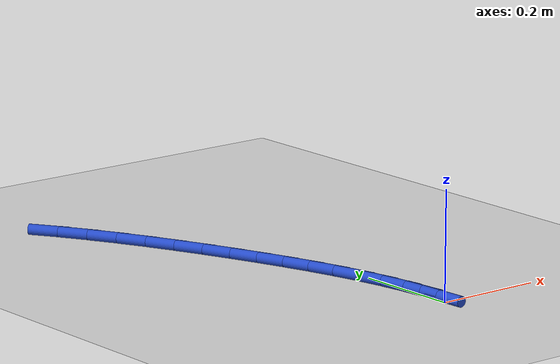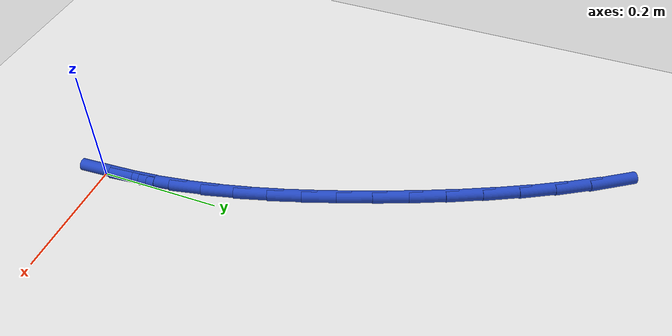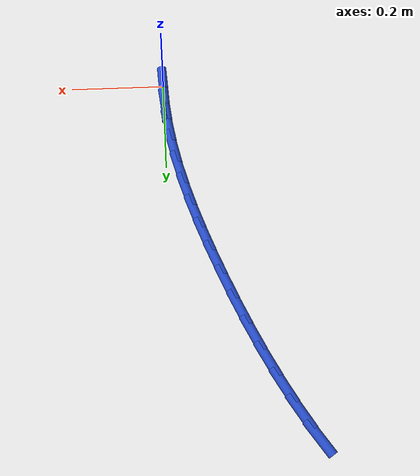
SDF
<sdf version="1.6">
 <world name="default">
  <model name="ground_plane">
   <static>1</static>
   <link name="link">
    <collision name="collision">
     <geometry><plane><normal>0 0 1</normal><size>100 100</size></plane></geometry>
     <surface><friction><ode><mu>100</mu><mu2>50</mu2></ode></friction></surface>
    </collision>
    <visual name="visual">
     <cast_shadows>0</cast_shadows>
     <geometry><plane><normal>0 0 1</normal><size>100 100</size></plane></geometry>
     <material>
      <script><uri>file://media/materials/scripts/gazebo.material</uri><name>Gazebo/WhiteGlow</name></script>
     </material>
    </visual>
   </link>
  </model>
  <model name="line">
   <link name="link_1">
    <pose>-0.002669319300938437 0.05283729916652684 0.01 0 1.57 -1.4642558566457982</pose>
    <collision name="collision">
     <geometry><cylinder><radius>0.01</radius><length>0.08</length></cylinder></geometry>
    </collision>
    <visual name="visual">
     <material>
      <script><name>Gazebo/Blue</name><uri>file://media/materials/scripts/gazebo.material</uri></script>
     </material>
     <geometry><cylinder><radius>0.01</radius><length>0.08</length></cylinder></geometry>
    </visual>
   </link>
   <link name="link_2">
    <pose>-0.008244664585451691 0.1049699233846303 0.01 0 1.57 -1.4117139446794178</pose>
    <collision name="collision">
     <geometry><cylinder><radius>0.01</radius><length>0.08</length></cylinder></geometry>
    </collision>
    <visual name="visual">
     <material>
      <script><name>Gazebo/Blue</name><uri>file://media/materials/scripts/gazebo.material</uri></script>
     </material>
     <geometry><cylinder><radius>0.01</radius><length>0.08</length></cylinder></geometry>
    </visual>
   </link>
   <link name="link_3">
    <pose>-0.016528430032021937 0.15660208721732294 0.01 0 1.57 -1.3635422617413602</pose>
    <collision name="collision">
     <geometry><cylinder><radius>0.01</radius><length>0.08</length></cylinder></geometry>
    </collision>
    <visual name="visual">
     <material>
      <script><name>Gazebo/Blue</name><uri>file://media/materials/scripts/gazebo.material</uri></script>
     </material>
     <geometry><cylinder><radius>0.01</radius><length>0.08</length></cylinder></geometry>
    </visual>
   </link>
   <link name="link_4">
    <pose>-0.027323009819131303 0.20793800522761732 0.01 0 1.57 -1.320373622092523</pose>
    <collision name="collision">
     <geometry><cylinder><radius>0.01</radius><length>0.08</length></cylinder></geometry>
    </collision>
    <visual name="visual">
     <material>
      <script><name>Gazebo/Blue</name><uri>file://media/materials/scripts/gazebo.material</uri></script>
     </material>
     <geometry><cylinder><radius>0.01</radius><length>0.08</length></cylinder></geometry>
    </visual>
   </link>
   <link name="link_5">
    <pose>-0.04043079812526196 0.2591818919785262 0.01 0 1.57 -1.2826195614353006</pose>
    <collision name="collision">
     <geometry><cylinder><radius>0.01</radius><length>0.08</length></cylinder></geometry>
    </collision>
    <visual name="visual">
     <material>
      <script><name>Gazebo/Blue</name><uri>file://media/materials/scripts/gazebo.material</uri></script>
     </material>
     <geometry><cylinder><radius>0.01</radius><length>0.08</length></cylinder></geometry>
    </visual>
   </link>
   <link name="link_6">
    <pose>-0.05565418912889604 0.31053796203306216 0.01 0 1.57 -1.2504880694065612</pose>
    <collision name="collision">
     <geometry><cylinder><radius>0.01</radius><length>0.08</length></cylinder></geometry>
    </collision>
    <visual name="visual">
     <material>
      <script><name>Gazebo/Blue</name><uri>file://media/materials/scripts/gazebo.material</uri></script>
     </material>
     <geometry><cylinder><radius>0.01</radius><length>0.08</length></cylinder></geometry>
    </visual>
   </link>
   <link name="link_7">
    <pose>-0.07279557700851565 0.3622104299542375 0.01 0 1.57 -1.2240154850599632</pose>
    <collision name="collision">
     <geometry><cylinder><radius>0.01</radius><length>0.08</length></cylinder></geometry>
    </collision>
    <visual name="visual">
     <material>
      <script><name>Gazebo/Blue</name><uri>file://media/materials/scripts/gazebo.material</uri></script>
     </material>
     <geometry><cylinder><radius>0.01</radius><length>0.08</length></cylinder></geometry>
    </visual>
   </link>
   <link name="link_8">
    <pose>-0.09165735594260299 0.41440351030506517 0.01 0 1.57 -1.2027747211286963</pose>
    <collision name="collision">
     <geometry><cylinder><radius>0.01</radius><length>0.08</length></cylinder></geometry>
    </collision>
    <visual name="visual">
     <material>
      <script><name>Gazebo/Blue</name><uri>file://media/materials/scripts/gazebo.material</uri></script>
     </material>
     <geometry><cylinder><radius>0.01</radius><length>0.08</length></cylinder></geometry>
    </visual>
   </link>
   <link name="link_9">
    <pose>-0.11205191719885056 0.46729549473235976 0.01 0 1.57 -1.182195684446897</pose>
    <collision name="collision">
     <geometry><cylinder><radius>0.01</radius><length>0.08</length></cylinder></geometry>
    </collision>
    <visual name="visual">
     <material>
      <script><name>Gazebo/Blue</name><uri>file://media/materials/scripts/gazebo.material</uri></script>
     </material>
     <geometry><cylinder><radius>0.01</radius><length>0.08</length></cylinder></geometry>
    </visual>
   </link>
   <link name="link_10">
    <pose>-0.13392477181203818 0.5207194891499809 0.01 0 1.57 -1.1589195291376073</pose>
    <collision name="collision">
     <geometry><cylinder><radius>0.01</radius><length>0.08</length></cylinder></geometry>
    </collision>
    <visual name="visual">
     <material>
      <script><name>Gazebo/Blue</name><uri>file://media/materials/scripts/gazebo.material</uri></script>
     </material>
     <geometry><cylinder><radius>0.01</radius><length>0.08</length></cylinder></geometry>
    </visual>
   </link>
   <link name="link_11">
    <pose>-0.15731608827790985 0.5742631482833028 0.01 0 1.57 -1.132567049161847</pose>
    <collision name="collision">
     <geometry><cylinder><radius>0.01</radius><length>0.08</length></cylinder></geometry>
    </collision>
    <visual name="visual">
     <material>
      <script><name>Gazebo/Blue</name><uri>file://media/materials/scripts/gazebo.material</uri></script>
     </material>
     <geometry><cylinder><radius>0.01</radius><length>0.08</length></cylinder></geometry>
    </visual>
   </link>
   <link name="link_12">
    <pose>-0.18226805824399656 0.6275088807312389 0.01 0 1.57 -1.1027464000518488</pose>
    <collision name="collision">
     <geometry><cylinder><radius>0.01</radius><length>0.08</length></cylinder></geometry>
    </collision>
    <visual name="visual">
     <material>
      <script><name>Gazebo/Blue</name><uri>file://media/materials/scripts/gazebo.material</uri></script>
     </material>
     <geometry><cylinder><radius>0.01</radius><length>0.08</length></cylinder></geometry>
    </visual>
   </link>
   <link name="link_13">
    <pose>-0.2088228733578294 0.6800390950927037 0.01 0 1.57 -1.068977757885744</pose>
    <collision name="collision">
     <geometry><cylinder><radius>0.01</radius><length>0.08</length></cylinder></geometry>
    </collision>
    <visual name="visual">
     <material>
      <script><name>Gazebo/Blue</name><uri>file://media/materials/scripts/gazebo.material</uri></script>
     </material>
     <geometry><cylinder><radius>0.01</radius><length>0.08</length></cylinder></geometry>
    </visual>
   </link>
   <link name="link_14">
    <pose>-0.2370227252669392 0.7314361999666104 0.01 0 1.57 -1.0306831477319096</pose>
    <collision name="collision">
     <geometry><cylinder><radius>0.01</radius><length>0.08</length></cylinder></geometry>
    </collision>
    <visual name="visual">
     <material>
      <script><name>Gazebo/Blue</name><uri>file://media/materials/scripts/gazebo.material</uri></script>
     </material>
     <geometry><cylinder><radius>0.01</radius><length>0.08</length></cylinder></geometry>
    </visual>
   </link>
   <link name="link_15">
    <pose>-0.26690980561885735 0.7812826039518731 0.01 0 1.57 -0.9871768040926602</pose>
    <collision name="collision">
     <geometry><cylinder><radius>0.01</radius><length>0.08</length></cylinder></geometry>
    </collision>
    <visual name="visual">
     <material>
      <script><name>Gazebo/Blue</name><uri>file://media/materials/scripts/gazebo.material</uri></script>
     </material>
     <geometry><cylinder><radius>0.01</radius><length>0.08</length></cylinder></geometry>
    </visual>
   </link>
   <link name="link_140">
    <pose>-2.0816681711721685e-17 1.249000902703301e-16 0.01 0 1.57 -1.5195911643607747</pose>
    <collision name="collision">
     <geometry><cylinder><radius>0.01</radius><length>0.08</length></cylinder></geometry>
    </collision>
    <visual name="visual">
     <material>
      <script><name>Gazebo/Blue</name><uri>file://media/materials/scripts/gazebo.material</uri></script>
     </material>
     <geometry><cylinder><radius>0.01</radius><length>0.08</length></cylinder></geometry>
    </visual>
   </link>
   <link name="link_141">
    <pose>-0.0027023443543172966 0.05272870922168067 0.01 0 1.57 -1.5195911643607751</pose>
    <collision name="collision">
     <geometry><cylinder><radius>0.01</radius><length>0.08</length></cylinder></geometry>
    </collision>
    <visual name="visual">
     <material>
      <script><name>Gazebo/Blue</name><uri>file://media/materials/scripts/gazebo.material</uri></script>
     </material>
     <geometry><cylinder><radius>0.01</radius><length>0.08</length></cylinder></geometry>
    </visual>
   </link>
  </model>
 </world>
</sdf>
